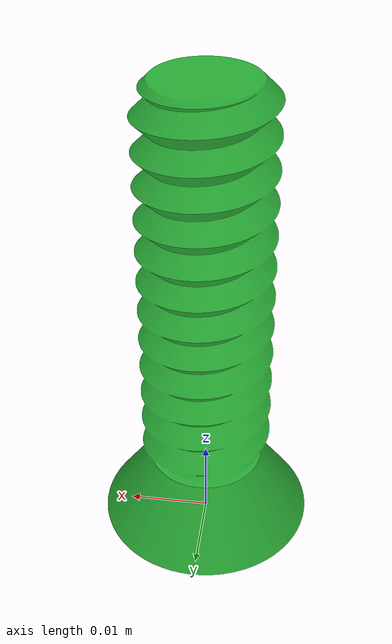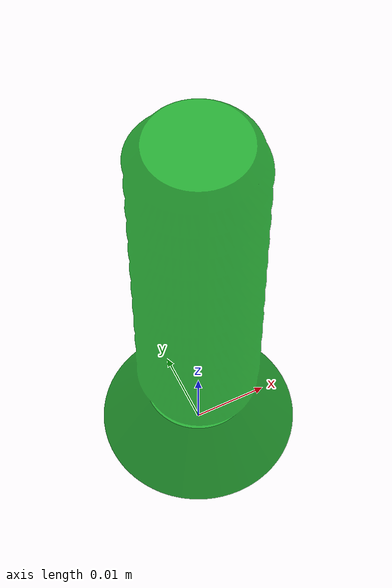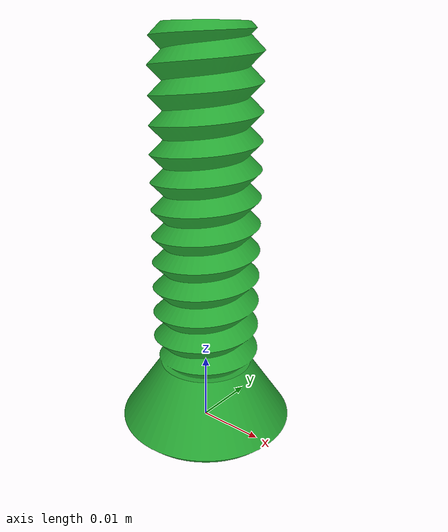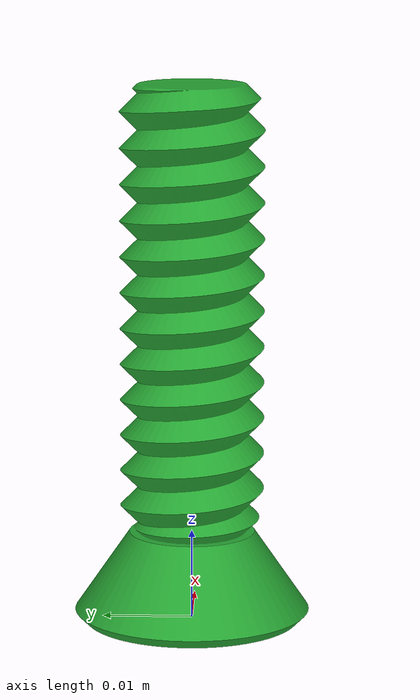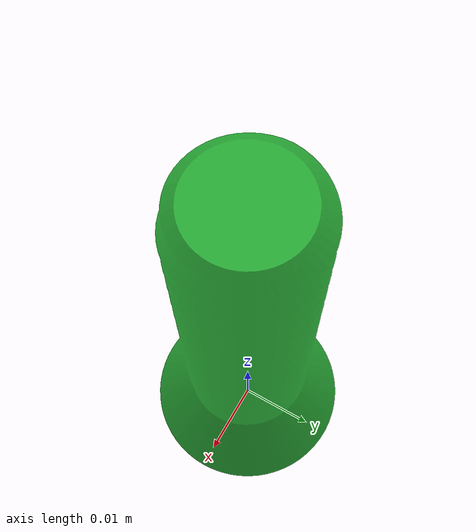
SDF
<?xml version="1.0"?>
<sdf version="1.4">
         <model name="bolt_25x8_countersunk">
             <static>true</static>
             <link name="link">
                 <pose>0 0 0 0 0 0</pose>
                 <inertial>
                     <pose>1e-10 1.0498e-06 0.0265605148 0 0 0 </pose>
                     <mass>1.1e-05</mass>
                     <inertia>
                         <ixx>3.80593809653e-09</ixx>
                         <ixy>1.488e-17</ixy>
                         <ixz>2.99291721e-12</ixz>
                         <iyy>3.80615900167e-09</iyy>
                         <iyz>-9.320109e-14</iyz>
                         <izz>3.9795113567e-10</izz>
                     </inertia>
                 </inertial>

                 <visual name="visual">
                     <geometry>
                         <mesh>
                             <uri>model://bolt_25x8_countersunk/meshes/bolt_25x8_countersunk.stl</uri>
                         </mesh>
                     </geometry>
                     <material>
                         <script>
                             <uri>file://media/materials/scripts/gazebo.material</uri>
                             <name>Gazebo/Green</name>
                         </script>
                     </material>
                 </visual>

                 <collision name="collision">
                     <geometry>
                         <mesh>
                             <uri>model://bolt_25x8_countersunk/meshes/bolt_25x8_countersunk.stl</uri>
                         </mesh>
                     </geometry>
                 </collision>
             </link>
         </model>
     </sdf>
